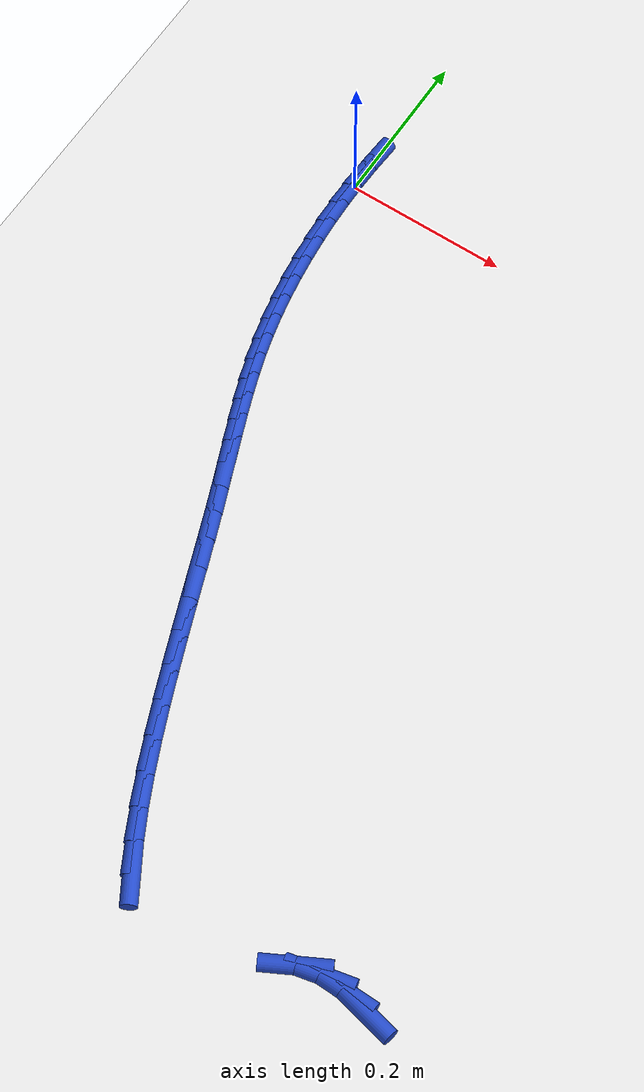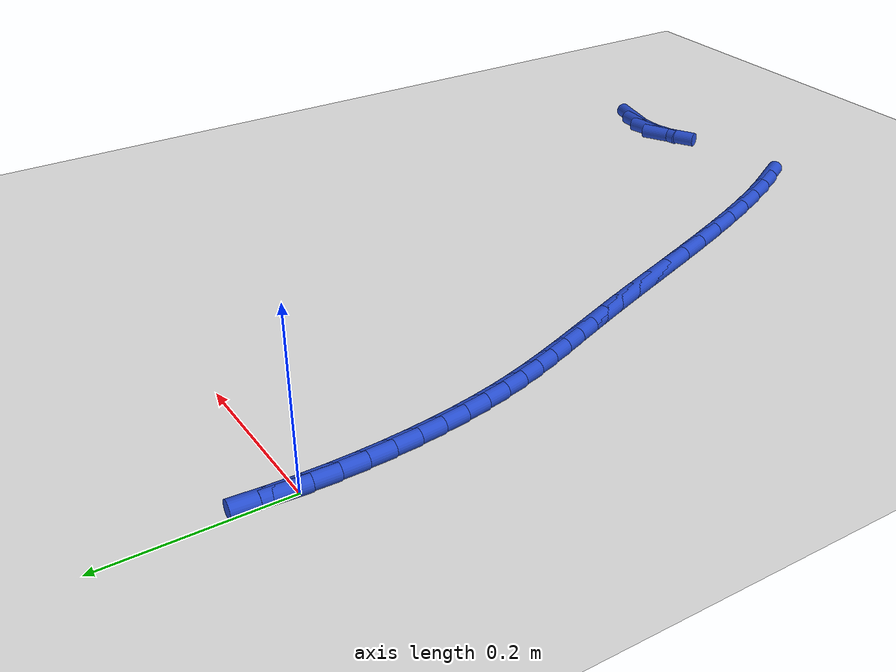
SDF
<sdf version="1.6">
 <world name="default">
  <model name="ground_plane">
   <static>1</static>
   <link name="link">
    <collision name="collision">
     <geometry><plane><normal>0 0 1</normal><size>100 100</size></plane></geometry>
     <surface><friction><ode><mu>100</mu><mu2>50</mu2></ode></friction></surface>
    </collision>
    <visual name="visual">
     <cast_shadows>0</cast_shadows>
     <geometry><plane><normal>0 0 1</normal><size>100 100</size></plane></geometry>
     <material>
      <script><uri>file://media/materials/scripts/gazebo.material</uri><name>Gazebo/WhiteGlow</name></script>
     </material>
    </visual>
   </link>
  </model>
  <model name="line">
   <link name="link_0">
    <pose>-4.336808689942018e-18 -1.0408340855860843e-16 0.01 0 1.57 1.5462348624224949</pose>
    <collision name="collision">
     <geometry><cylinder><radius>0.01</radius><length>0.08</length></cylinder></geometry>
    </collision>
    <visual name="visual">
     <material>
      <script><name>Gazebo/Blue</name><uri>file://media/materials/scripts/gazebo.material</uri></script>
     </material>
     <geometry><cylinder><radius>0.01</radius><length>0.08</length></cylinder></geometry>
    </visual>
   </link>
   <link name="link_229">
    <pose>0.5594635255328335 -0.8353849624430253 0.01 0 1.57 -0.21013727885817918</pose>
    <collision name="collision">
     <geometry><cylinder><radius>0.01</radius><length>0.08</length></cylinder></geometry>
    </collision>
    <visual name="visual">
     <material>
      <script><name>Gazebo/Blue</name><uri>file://media/materials/scripts/gazebo.material</uri></script>
     </material>
     <geometry><cylinder><radius>0.01</radius><length>0.08</length></cylinder></geometry>
    </visual>
   </link>
   <link name="link_230">
    <pose>0.5297192223404988 -0.8290409200637745 0.01 0 1.57 -0.016757229321581964</pose>
    <collision name="collision">
     <geometry><cylinder><radius>0.01</radius><length>0.08</length></cylinder></geometry>
    </collision>
    <visual name="visual">
     <material>
      <script><name>Gazebo/Blue</name><uri>file://media/materials/scripts/gazebo.material</uri></script>
     </material>
     <geometry><cylinder><radius>0.01</radius><length>0.08</length></cylinder></geometry>
    </visual>
   </link>
   <link name="link_231">
    <pose>0.5012623961028637 -0.8285640178611116 0.01 0 1.57 0.2193114795798487</pose>
    <collision name="collision">
     <geometry><cylinder><radius>0.01</radius><length>0.08</length></cylinder></geometry>
    </collision>
    <visual name="visual">
     <material>
      <script><name>Gazebo/Blue</name><uri>file://media/materials/scripts/gazebo.material</uri></script>
     </material>
     <geometry><cylinder><radius>0.01</radius><length>0.08</length></cylinder></geometry>
    </visual>
   </link>
   <link name="link_232">
    <pose>0.4747903383163079 -0.8344645490700142 0.01 0 1.57 0.4932326393096253</pose>
    <collision name="collision">
     <geometry><cylinder><radius>0.01</radius><length>0.08</length></cylinder></geometry>
    </collision>
    <visual name="visual">
     <material>
      <script><name>Gazebo/Blue</name><uri>file://media/materials/scripts/gazebo.material</uri></script>
     </material>
     <geometry><cylinder><radius>0.01</radius><length>0.08</length></cylinder></geometry>
    </visual>
   </link>
   <link name="link_243">
    <pose>0.27406176151540373 -0.8446137305664746 0.01 0 1.57 -1.0419275436097668</pose>
    <collision name="collision">
     <geometry><cylinder><radius>0.01</radius><length>0.08</length></cylinder></geometry>
    </collision>
    <visual name="visual">
     <material>
      <script><name>Gazebo/Blue</name><uri>file://media/materials/scripts/gazebo.material</uri></script>
     </material>
     <geometry><cylinder><radius>0.01</radius><length>0.08</length></cylinder></geometry>
    </visual>
   </link>
   <link name="link_244">
    <pose>0.2570465667398324 -0.8154979884019347 0.01 0 1.57 -1.0913558680509532</pose>
    <collision name="collision">
     <geometry><cylinder><radius>0.01</radius><length>0.08</length></cylinder></geometry>
    </collision>
    <visual name="visual">
     <material>
      <script><name>Gazebo/Blue</name><uri>file://media/materials/scripts/gazebo.material</uri></script>
     </material>
     <geometry><cylinder><radius>0.01</radius><length>0.08</length></cylinder></geometry>
    </visual>
   </link>
   <link name="link_245">
    <pose>0.2402440145492759 -0.7831791638242804 0.01 0 1.57 -1.1283186168629458</pose>
    <collision name="collision">
     <geometry><cylinder><radius>0.01</radius><length>0.08</length></cylinder></geometry>
    </collision>
    <visual name="visual">
     <material>
      <script><name>Gazebo/Blue</name><uri>file://media/materials/scripts/gazebo.material</uri></script>
     </material>
     <geometry><cylinder><radius>0.01</radius><length>0.08</length></cylinder></geometry>
    </visual>
   </link>
   <link name="link_246">
    <pose>0.2236966810076687 -0.7482552464727015 0.01 0 1.57 -1.156291951829225</pose>
    <collision name="collision">
     <geometry><cylinder><radius>0.01</radius><length>0.08</length></cylinder></geometry>
    </collision>
    <visual name="visual">
     <material>
      <script><name>Gazebo/Blue</name><uri>file://media/materials/scripts/gazebo.material</uri></script>
     </material>
     <geometry><cylinder><radius>0.01</radius><length>0.08</length></cylinder></geometry>
    </visual>
   </link>
   <link name="link_247">
    <pose>0.207447142178945 -0.7113242259863881 0.01 0 1.57 -1.177470389645633</pose>
    <collision name="collision">
     <geometry><cylinder><radius>0.01</radius><length>0.08</length></cylinder></geometry>
    </collision>
    <visual name="visual">
     <material>
      <script><name>Gazebo/Blue</name><uri>file://media/materials/scripts/gazebo.material</uri></script>
     </material>
     <geometry><cylinder><radius>0.01</radius><length>0.08</length></cylinder></geometry>
    </visual>
   </link>
   <link name="link_248">
    <pose>0.19153797412704074 -0.6729840920045336 0.01 0 1.57 -1.1932501869480665</pose>
    <collision name="collision">
     <geometry><cylinder><radius>0.01</radius><length>0.08</length></cylinder></geometry>
    </collision>
    <visual name="visual">
     <material>
      <script><name>Gazebo/Blue</name><uri>file://media/materials/scripts/gazebo.material</uri></script>
     </material>
     <geometry><cylinder><radius>0.01</radius><length>0.08</length></cylinder></geometry>
    </visual>
   </link>
   <link name="link_249">
    <pose>0.17601175291588977 -0.6338328341663261 0.01 0 1.57 -1.204495869532525</pose>
    <collision name="collision">
     <geometry><cylinder><radius>0.01</radius><length>0.08</length></cylinder></geometry>
    </collision>
    <visual name="visual">
     <material>
      <script><name>Gazebo/Blue</name><uri>file://media/materials/scripts/gazebo.material</uri></script>
     </material>
     <geometry><cylinder><radius>0.01</radius><length>0.08</length></cylinder></geometry>
    </visual>
   </link>
   <link name="link_250">
    <pose>0.16091105460942787 -0.5944684421109595 0.01 0 1.57 -1.2116821842483805</pose>
    <collision name="collision">
     <geometry><cylinder><radius>0.01</radius><length>0.08</length></cylinder></geometry>
    </collision>
    <visual name="visual">
     <material>
      <script><name>Gazebo/Blue</name><uri>file://media/materials/scripts/gazebo.material</uri></script>
     </material>
     <geometry><cylinder><radius>0.01</radius><length>0.08</length></cylinder></geometry>
    </visual>
   </link>
   <link name="link_251">
    <pose>0.146278455271589 -0.5554889054776222 0.01 0 1.57 -1.214955377046714</pose>
    <collision name="collision">
     <geometry><cylinder><radius>0.01</radius><length>0.08</length></cylinder></geometry>
    </collision>
    <visual name="visual">
     <material>
      <script><name>Gazebo/Blue</name><uri>file://media/materials/scripts/gazebo.material</uri></script>
     </material>
     <geometry><cylinder><radius>0.01</radius><length>0.08</length></cylinder></geometry>
    </visual>
   </link>
   <link name="link_252">
    <pose>0.13215653096630886 -0.5174922139055075 0.01 0 1.57 -1.2141284119114977</pose>
    <collision name="collision">
     <geometry><cylinder><radius>0.01</radius><length>0.08</length></cylinder></geometry>
    </collision>
    <visual name="visual">
     <material>
      <script><name>Gazebo/Blue</name><uri>file://media/materials/scripts/gazebo.material</uri></script>
     </material>
     <geometry><cylinder><radius>0.01</radius><length>0.08</length></cylinder></geometry>
    </visual>
   </link>
   <link name="link_253">
    <pose>0.1185878577575215 -0.4810763570338042 0.01 0 1.57 -1.208600118136145</pose>
    <collision name="collision">
     <geometry><cylinder><radius>0.01</radius><length>0.08</length></cylinder></geometry>
    </collision>
    <visual name="visual">
     <material>
      <script><name>Gazebo/Blue</name><uri>file://media/materials/scripts/gazebo.material</uri></script>
     </material>
     <geometry><cylinder><radius>0.01</radius><length>0.08</length></cylinder></geometry>
    </visual>
   </link>
   <link name="link_254">
    <pose>0.1056150110554459 -0.44683928726785677 0.01 0 1.57 -1.1993224569734644</pose>
    <collision name="collision">
     <geometry><cylinder><radius>0.01</radius><length>0.08</length></cylinder></geometry>
    </collision>
    <visual name="visual">
     <material>
      <script><name>Gazebo/Blue</name><uri>file://media/materials/scripts/gazebo.material</uri></script>
     </material>
     <geometry><cylinder><radius>0.01</radius><length>0.08</length></cylinder></geometry>
    </visual>
   </link>
   <link name="link_255">
    <pose>0.09327684877670647 -0.41516721908170695 0.01 0 1.57 -1.1930754774847885</pose>
    <collision name="collision">
     <geometry><cylinder><radius>0.01</radius><length>0.08</length></cylinder></geometry>
    </collision>
    <visual name="visual">
     <material>
      <script><name>Gazebo/Blue</name><uri>file://media/materials/scripts/gazebo.material</uri></script>
     </material>
     <geometry><cylinder><radius>0.01</radius><length>0.08</length></cylinder></geometry>
    </visual>
   </link>
   <link name="link_256">
    <pose>0.08159977553958382 -0.3857370622624376 0.01 0 1.57 -1.1925263953704972</pose>
    <collision name="collision">
     <geometry><cylinder><radius>0.01</radius><length>0.08</length></cylinder></geometry>
    </collision>
    <visual name="visual">
     <material>
      <script><name>Gazebo/Blue</name><uri>file://media/materials/scripts/gazebo.material</uri></script>
     </material>
     <geometry><cylinder><radius>0.01</radius><length>0.08</length></cylinder></geometry>
    </visual>
   </link>
   <link name="link_257">
    <pose>0.07060759124583181 -0.35807736930344963 0.01 0 1.57 -1.1988470209094955</pose>
    <collision name="collision">
     <geometry><cylinder><radius>0.01</radius><length>0.08</length></cylinder></geometry>
    </collision>
    <visual name="visual">
     <material>
      <script><name>Gazebo/Blue</name><uri>file://media/materials/scripts/gazebo.material</uri></script>
     </material>
     <geometry><cylinder><radius>0.01</radius><length>0.08</length></cylinder></geometry>
    </visual>
   </link>
   <link name="link_258">
    <pose>0.06032409579720451 -0.3317166926981446 0.01 0 1.57 -1.2128468455884567</pose>
    <collision name="collision">
     <geometry><cylinder><radius>0.01</radius><length>0.08</length></cylinder></geometry>
    </collision>
    <visual name="visual">
     <material>
      <script><name>Gazebo/Blue</name><uri>file://media/materials/scripts/gazebo.material</uri></script>
     </material>
     <geometry><cylinder><radius>0.01</radius><length>0.08</length></cylinder></geometry>
    </visual>
   </link>
   <link name="link_259">
    <pose>0.05077308909545677 -0.3061835849399259 0.01 0 1.57 -1.234731208593055</pose>
    <collision name="collision">
     <geometry><cylinder><radius>0.01</radius><length>0.08</length></cylinder></geometry>
    </collision>
    <visual name="visual">
     <material>
      <script><name>Gazebo/Blue</name><uri>file://media/materials/scripts/gazebo.material</uri></script>
     </material>
     <geometry><cylinder><radius>0.01</radius><length>0.08</length></cylinder></geometry>
    </visual>
   </link>
   <link name="link_260">
    <pose>0.04197837104234233 -0.2810065985221944 0.01 0 1.57 -1.2639260752906538</pose>
    <collision name="collision">
     <geometry><cylinder><radius>0.01</radius><length>0.08</length></cylinder></geometry>
    </collision>
    <visual name="visual">
     <material>
      <script><name>Gazebo/Blue</name><uri>file://media/materials/scripts/gazebo.material</uri></script>
     </material>
     <geometry><cylinder><radius>0.01</radius><length>0.08</length></cylinder></geometry>
    </visual>
   </link>
   <link name="link_261">
    <pose>0.033963741539616 -0.2557142859383535 0.01 0 1.57 -1.2990566088682527</pose>
    <collision name="collision">
     <geometry><cylinder><radius>0.01</radius><length>0.08</length></cylinder></geometry>
    </collision>
    <visual name="visual">
     <material>
      <script><name>Gazebo/Blue</name><uri>file://media/materials/scripts/gazebo.material</uri></script>
     </material>
     <geometry><cylinder><radius>0.01</radius><length>0.08</length></cylinder></geometry>
    </visual>
   </link>
   <link name="link_262">
    <pose>0.026753000445502002 -0.22983520245055775 0.01 0 1.57 -1.3370959312294555</pose>
    <collision name="collision">
     <geometry><cylinder><radius>0.01</radius><length>0.08</length></cylinder></geometry>
    </collision>
    <visual name="visual">
     <material>
      <script><name>Gazebo/Blue</name><uri>file://media/materials/scripts/gazebo.material</uri></script>
     </material>
     <geometry><cylinder><radius>0.01</radius><length>0.08</length></cylinder></geometry>
    </visual>
   </link>
   <link name="link_263">
    <pose>0.020368127959152615 -0.20301364504159364 0.01 0 1.57 -1.3732462041559381</pose>
    <collision name="collision">
     <geometry><cylinder><radius>0.01</radius><length>0.08</length></cylinder></geometry>
    </collision>
    <visual name="visual">
     <material>
      <script><name>Gazebo/Blue</name><uri>file://media/materials/scripts/gazebo.material</uri></script>
     </material>
     <geometry><cylinder><radius>0.01</radius><length>0.08</length></cylinder></geometry>
    </visual>
   </link>
   <link name="link_264">
    <pose>0.014824444876829138 -0.17531749045177314 0.01 0 1.57 -1.4072112585527135</pose>
    <collision name="collision">
     <geometry><cylinder><radius>0.01</radius><length>0.08</length></cylinder></geometry>
    </collision>
    <visual name="visual">
     <material>
      <script><name>Gazebo/Blue</name><uri>file://media/materials/scripts/gazebo.material</uri></script>
     </material>
     <geometry><cylinder><radius>0.01</radius><length>0.08</length></cylinder></geometry>
    </visual>
   </link>
   <link name="link_265">
    <pose>0.010135748986613399 -0.14691148828618922 0.01 0 1.57 -1.4396105505742602</pose>
    <collision name="collision">
     <geometry><cylinder><radius>0.01</radius><length>0.08</length></cylinder></geometry>
    </collision>
    <visual name="visual">
     <material>
      <script><name>Gazebo/Blue</name><uri>file://media/materials/scripts/gazebo.material</uri></script>
     </material>
     <geometry><cylinder><radius>0.01</radius><length>0.08</length></cylinder></geometry>
    </visual>
   </link>
   <link name="link_266">
    <pose>0.0063158380765865885 -0.11796038814993139 0.01 0 1.57 -1.470986467014575</pose>
    <collision name="collision">
     <geometry><cylinder><radius>0.01</radius><length>0.08</length></cylinder></geometry>
    </collision>
    <visual name="visual">
     <material>
      <script><name>Gazebo/Blue</name><uri>file://media/materials/scripts/gazebo.material</uri></script>
     </material>
     <geometry><cylinder><radius>0.01</radius><length>0.08</length></cylinder></geometry>
    </visual>
   </link>
   <link name="link_267">
    <pose>0.003378509934830432 -0.08862893964809285 0.01 0 1.57 -1.5018313691080674</pose>
    <collision name="collision">
     <geometry><cylinder><radius>0.01</radius><length>0.08</length></cylinder></geometry>
    </collision>
    <visual name="visual">
     <material>
      <script><name>Gazebo/Blue</name><uri>file://media/materials/scripts/gazebo.material</uri></script>
     </material>
     <geometry><cylinder><radius>0.01</radius><length>0.08</length></cylinder></geometry>
    </visual>
   </link>
   <link name="link_268">
    <pose>0.0013375623494262872 -0.059081892385764015 0.01 0 1.57 -1.5326105192978823</pose>
    <collision name="collision">
     <geometry><cylinder><radius>0.01</radius><length>0.08</length></cylinder></geometry>
    </collision>
    <visual name="visual">
     <material>
      <script><name>Gazebo/Blue</name><uri>file://media/materials/scripts/gazebo.material</uri></script>
     </material>
     <geometry><cylinder><radius>0.01</radius><length>0.08</length></cylinder></geometry>
    </visual>
   </link>
   <link name="link_269">
    <pose>0.0002067931084556206 -0.029483995968035356 0.01 0 1.57 -1.563782700898133</pose>
    <collision name="collision">
     <geometry><cylinder><radius>0.01</radius><length>0.08</length></cylinder></geometry>
    </collision>
    <visual name="visual">
     <material>
      <script><name>Gazebo/Blue</name><uri>file://media/materials/scripts/gazebo.material</uri></script>
     </material>
     <geometry><cylinder><radius>0.01</radius><length>0.08</length></cylinder></geometry>
    </visual>
   </link>
   <link name="link_270">
    <pose>-1.3877787807814457e-17 5.551115123125783e-17 0.01 0 1.57 1.545772544149403</pose>
    <collision name="collision">
     <geometry><cylinder><radius>0.01</radius><length>0.08</length></cylinder></geometry>
    </collision>
    <visual name="visual">
     <material>
      <script><name>Gazebo/Blue</name><uri>file://media/materials/scripts/gazebo.material</uri></script>
     </material>
     <geometry><cylinder><radius>0.01</radius><length>0.08</length></cylinder></geometry>
    </visual>
   </link>
   <link name="link_271">
    <pose>0.000730980812140858 0.029205345913252617 0.01 0 1.57 1.5123636632249624</pose>
    <collision name="collision">
     <geometry><cylinder><radius>0.01</radius><length>0.08</length></cylinder></geometry>
    </collision>
    <visual name="visual">
     <material>
      <script><name>Gazebo/Blue</name><uri>file://media/materials/scripts/gazebo.material</uri></script>
     </material>
     <geometry><cylinder><radius>0.01</radius><length>0.08</length></cylinder></geometry>
    </visual>
   </link>
  </model>
 </world>
</sdf>
